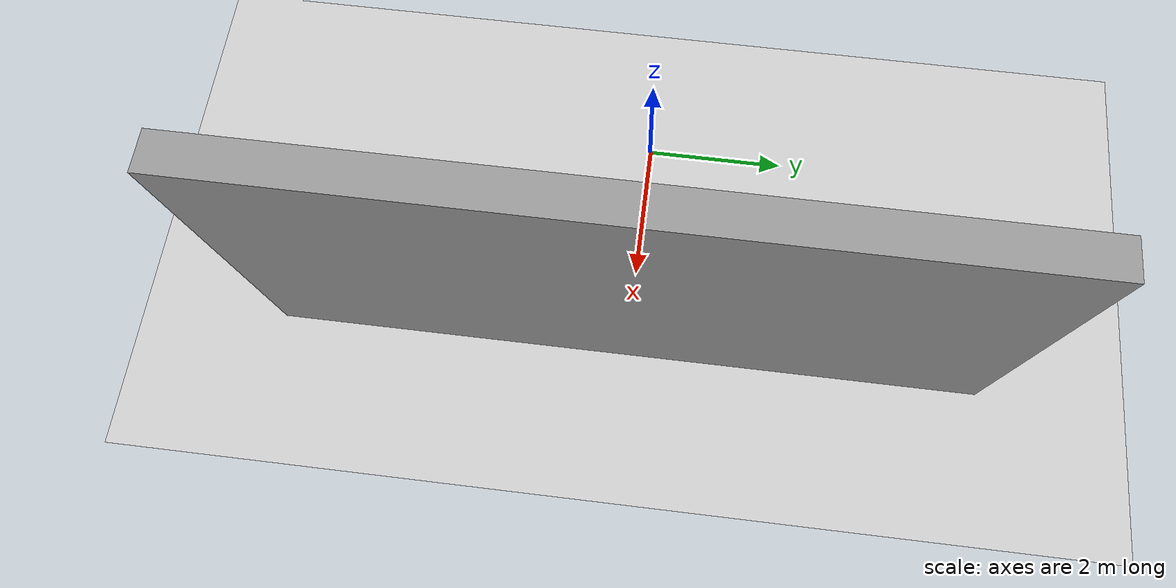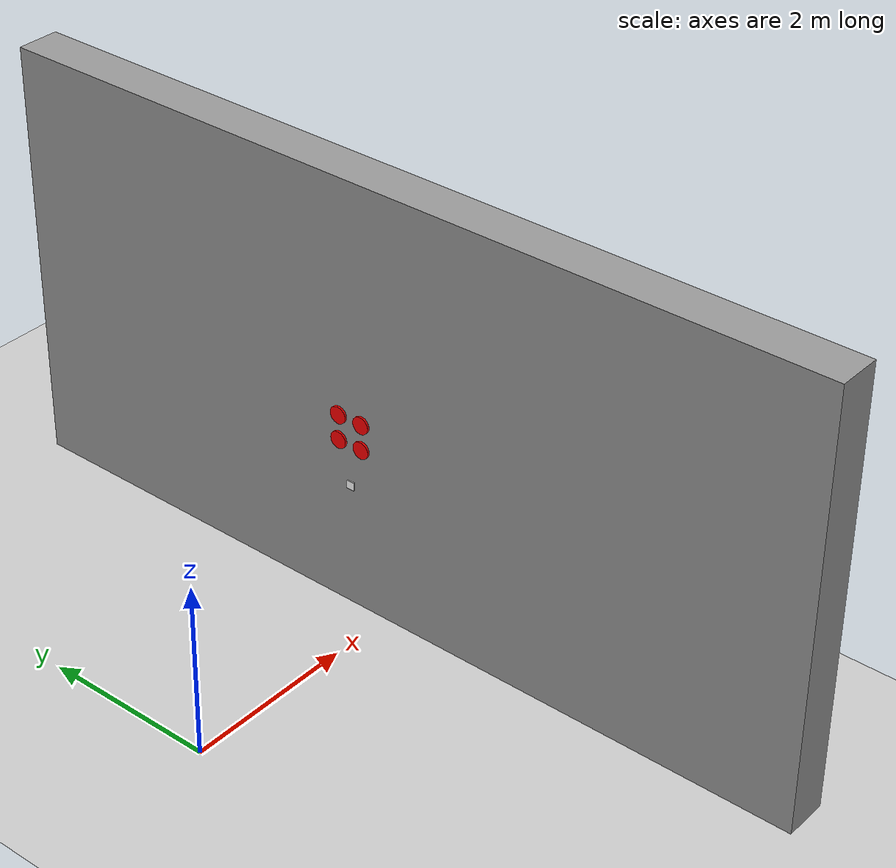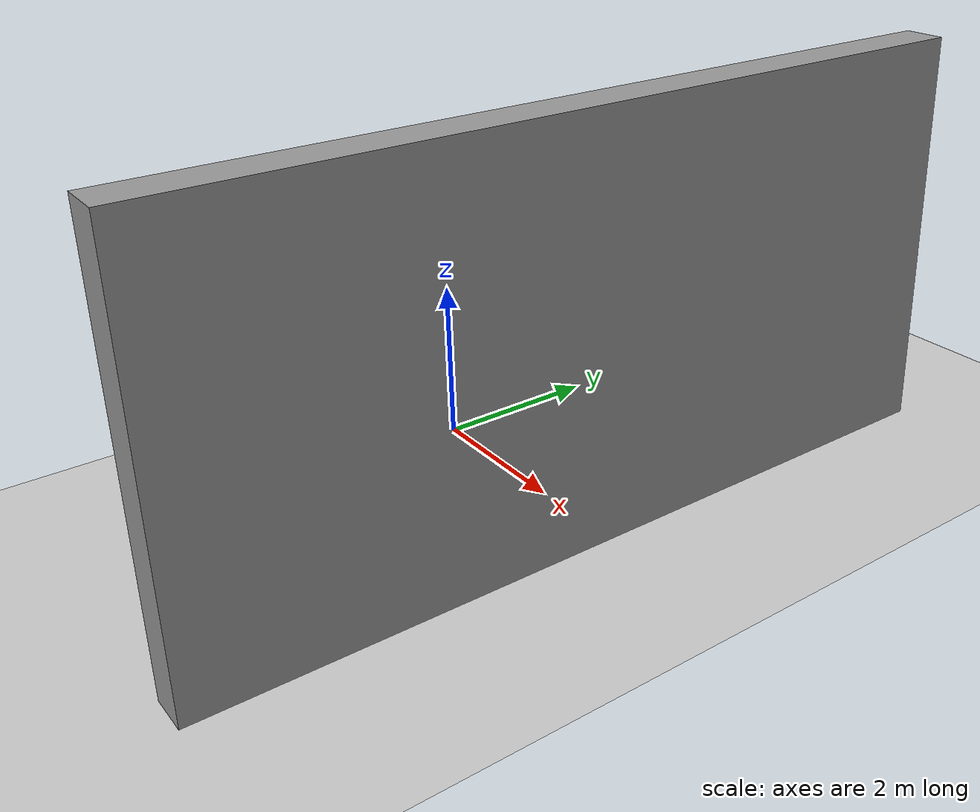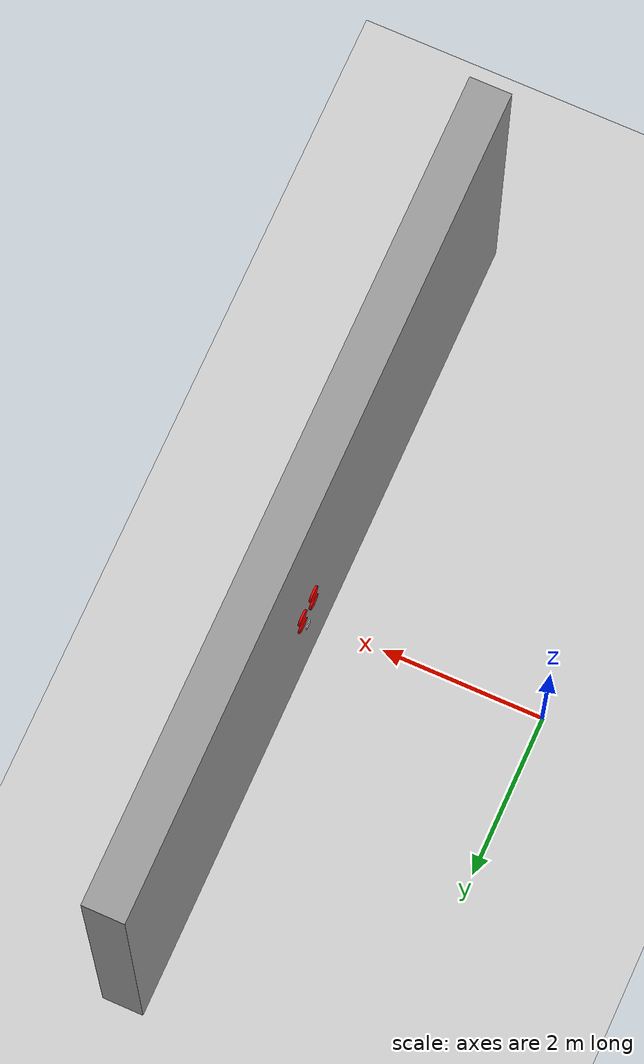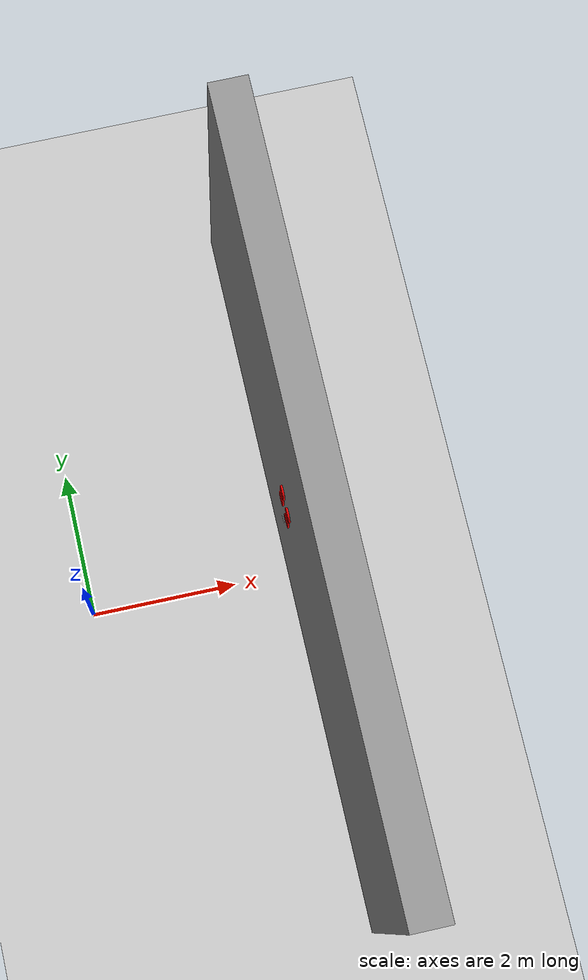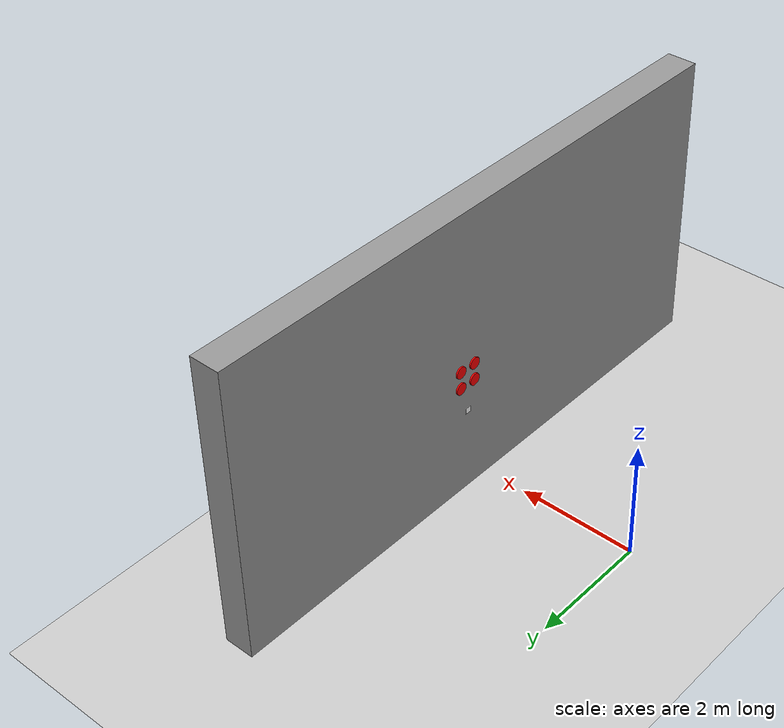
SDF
<sdf version="1.7">
 <world name="default">
  <light name="sun" type="directional">
   <pose>0 0 10 0 -0 0</pose>
   <diffuse>0.8 0.8 0.8 1</diffuse>
   <specular>0.2 0.2 0.2 1</specular>
   <attenuation>
    <range>1000</range>
    <constant>0.9</constant>
    <linear>0.01</linear>
    <quadratic>0.001</quadratic>
   </attenuation>
   <direction>-0.5 0.1 -0.9</direction>
   <spot><inner_angle>0</inner_angle><outer_angle>0</outer_angle><falloff>0</falloff></spot>
  </light>
  <model name="ground_plane">
   <static>1</static>
   <link name="link">
    <collision name="collision">
     <geometry><plane><normal>0 0 1</normal><size>100 100</size></plane></geometry>
     <surface>
      <contact><collide_bitmask>65535</collide_bitmask></contact>
      <friction><ode><mu>100</mu><mu2>50</mu2></ode></friction>
     </surface>
    </collision>
    <visual name="visual">
     <cast_shadows>0</cast_shadows>
     <geometry><plane><normal>0 0 1</normal><size>100 100</size></plane></geometry>
     <material>
      <script><uri>file://media/materials/scripts/gazebo.material</uri><name>Gazebo/Grey</name></script>
     </material>
    </visual>
   </link>
  </model>
  <gravity>0 0 -9.8</gravity>
  <magnetic_field>6e-06 2.3e-05 -4.2e-05</magnetic_field>
  <atmosphere type="adiabatic"/>
  <physics type="ode">
   <max_step_size>0.001</max_step_size>
   <real_time_factor>1</real_time_factor>
   <real_time_update_rate>1000</real_time_update_rate>
  </physics>
  <scene><ambient>0.4 0.4 0.4 1</ambient><background>0.7 0.7 0.7 1</background><shadows>1</shadows></scene>
  <spherical_coordinates>
   <surface_model>EARTH_WGS84</surface_model>
   <latitude_deg>0</latitude_deg>
   <longitude_deg>0</longitude_deg>
   <elevation>0</elevation>
   <heading_deg>0</heading_deg>
  </spherical_coordinates>
  <model name="my_wall">
   <link name="link">
    <inertial>
     <mass>1000</mass>
     <inertia><ixx>166.667</ixx><ixy>0</ixy><ixz>0</ixz><iyy>166.667</iyy><iyz>0</iyz><izz>166.667</izz></inertia>
    </inertial>
    <visual name="visual">
     <geometry><box><size>0.5 10 5</size></box></geometry>
     <material>
      <script><name>Gazebo/Grey</name><uri>file://media/materials/scripts/gazebo.material</uri></script>
      <shader type="pixel"><normal_map>__default__</normal_map></shader>
      <ambient>0.3 0.3 0.3 1</ambient>
      <diffuse>0.7 0.7 0.7 1</diffuse>
      <specular>0.01 0.01 0.01 1</specular>
      <emissive>0 0 0 1</emissive>
     </material>
    </visual>
    <collision name="collision">
     <geometry><box><size>0.5 10 5</size></box></geometry>
     <surface>
      <friction>
       <ode><mu>1</mu><mu2>1</mu2><fdir1>0 0 0</fdir1><slip1>0</slip1><slip2>0</slip2></ode>
       <torsional>
        <coefficient>1</coefficient>
        <patch_radius>0</patch_radius>
        <surface_radius>0</surface_radius>
        <use_patch_radius>1</use_patch_radius>
        <ode><slip>0</slip></ode>
       </torsional>
      </friction>
      <bounce><restitution_coefficient>0</restitution_coefficient><threshold>1e+06</threshold></bounce>
      <contact>
       <collide_without_contact>0</collide_without_contact>
       <collide_without_contact_bitmask>1</collide_without_contact_bitmask>
       <collide_bitmask>1</collide_bitmask>
       <ode>
        <soft_cfm>0</soft_cfm>
        <soft_erp>0.2</soft_erp>
        <kp>1e+13</kp>
        <kd>1</kd>
        <max_vel>0.01</max_vel>
        <min_depth>0</min_depth>
       </ode>
       <bullet>
        <split_impulse>1</split_impulse>
        <split_impulse_penetration_threshold>-0.01</split_impulse_penetration_threshold>
        <soft_cfm>0</soft_cfm>
        <soft_erp>0.2</soft_erp>
        <kp>1e+13</kp>
        <kd>1</kd>
       </bullet>
      </contact>
     </surface>
    </collision>
   </link>
   <static>1</static>
   <pose>3 0 2.50101 0 -0 0</pose>
  </model>
  <model name="my_red_marker_3">
   <link name="link">
    <inertial>
     <mass>1</mass>
     <inertia><ixx>0.145833</ixx><ixy>0</ixy><ixz>0</ixz><iyy>0.145833</iyy><iyz>0</iyz><izz>0.125</izz></inertia>
    </inertial>
    <pose>0 0 0 0 1.57 0</pose>
    <visual name="visual">
     <geometry><cylinder><radius>0.1</radius><length>0.05</length></cylinder></geometry>
     <material>
      <script><name>Gazebo/Grey</name><uri>file://media/materials/scripts/gazebo.material</uri></script>
      <shader type="pixel"><normal_map>__default__</normal_map></shader>
      <ambient>1 0 0 1</ambient>
      <diffuse>1 0 0 1</diffuse>
      <specular>1 0 0 1</specular>
      <emissive>0 0 0 1</emissive>
     </material>
    </visual>
    <collision name="collision">
     <geometry><cylinder><radius>0.1</radius><length>0.05</length></cylinder></geometry>
     <surface>
      <friction>
       <ode><mu>1</mu><mu2>1</mu2><fdir1>0 0 0</fdir1><slip1>0</slip1><slip2>0</slip2></ode>
       <torsional>
        <coefficient>1</coefficient>
        <patch_radius>0</patch_radius>
        <surface_radius>0</surface_radius>
        <use_patch_radius>1</use_patch_radius>
        <ode><slip>0</slip></ode>
       </torsional>
      </friction>
      <bounce><restitution_coefficient>0</restitution_coefficient><threshold>1e+06</threshold></bounce>
      <contact>
       <collide_without_contact>0</collide_without_contact>
       <collide_without_contact_bitmask>1</collide_without_contact_bitmask>
       <collide_bitmask>1</collide_bitmask>
       <ode>
        <soft_cfm>0</soft_cfm>
        <soft_erp>0.2</soft_erp>
        <kp>1e+13</kp>
        <kd>1</kd>
        <max_vel>0.01</max_vel>
        <min_depth>0</min_depth>
       </ode>
       <bullet>
        <split_impulse>1</split_impulse>
        <split_impulse_penetration_threshold>-0.01</split_impulse_penetration_threshold>
        <soft_cfm>0</soft_cfm>
        <soft_erp>0.2</soft_erp>
        <kp>1e+13</kp>
        <kd>1</kd>
       </bullet>
      </contact>
     </surface>
    </collision>
   </link>
   <static>1</static>
   <pose>2.75 0.3 2 0 0.000963 0</pose>
  </model>
  <model name="my_red_marker_3_clone">
   <link name="link">
    <inertial>
     <mass>1</mass>
     <inertia><ixx>0.145833</ixx><ixy>0</ixy><ixz>0</ixz><iyy>0.145833</iyy><iyz>0</iyz><izz>0.125</izz></inertia>
    </inertial>
    <pose>0 0 0 0 1.57 0</pose>
    <visual name="visual">
     <geometry><cylinder><radius>0.1</radius><length>0.05</length></cylinder></geometry>
     <material>
      <script><name>Gazebo/Grey</name><uri>file://media/materials/scripts/gazebo.material</uri></script>
      <shader type="pixel"><normal_map>__default__</normal_map></shader>
      <ambient>1 0 0 1</ambient>
      <diffuse>1 0 0 1</diffuse>
      <specular>1 0 0 1</specular>
      <emissive>0 0 0 1</emissive>
     </material>
    </visual>
    <collision name="collision">
     <geometry><cylinder><radius>0.1</radius><length>0.05</length></cylinder></geometry>
     <surface>
      <friction>
       <ode><mu>1</mu><mu2>1</mu2><fdir1>0 0 0</fdir1><slip1>0</slip1><slip2>0</slip2></ode>
       <torsional>
        <coefficient>1</coefficient>
        <patch_radius>0</patch_radius>
        <surface_radius>0</surface_radius>
        <use_patch_radius>1</use_patch_radius>
        <ode><slip>0</slip></ode>
       </torsional>
      </friction>
      <bounce><restitution_coefficient>0</restitution_coefficient><threshold>1e+06</threshold></bounce>
      <contact>
       <collide_without_contact>0</collide_without_contact>
       <collide_without_contact_bitmask>1</collide_without_contact_bitmask>
       <collide_bitmask>1</collide_bitmask>
       <ode>
        <soft_cfm>0</soft_cfm>
        <soft_erp>0.2</soft_erp>
        <kp>1e+13</kp>
        <kd>1</kd>
        <max_vel>0.01</max_vel>
        <min_depth>0</min_depth>
       </ode>
       <bullet>
        <split_impulse>1</split_impulse>
        <split_impulse_penetration_threshold>-0.01</split_impulse_penetration_threshold>
        <soft_cfm>0</soft_cfm>
        <soft_erp>0.2</soft_erp>
        <kp>1e+13</kp>
        <kd>1</kd>
       </bullet>
      </contact>
     </surface>
    </collision>
   </link>
   <static>1</static>
   <pose>2.75 0.6 2 0 0.000963 0</pose>
  </model>
  <model name="my_red_marker_3_clone_0">
   <link name="link">
    <inertial>
     <mass>1</mass>
     <inertia><ixx>0.145833</ixx><ixy>0</ixy><ixz>0</ixz><iyy>0.145833</iyy><iyz>0</iyz><izz>0.125</izz></inertia>
    </inertial>
    <pose>0 0 0 0 1.57 0</pose>
    <visual name="visual">
     <geometry><cylinder><radius>0.1</radius><length>0.05</length></cylinder></geometry>
     <material>
      <script><name>Gazebo/Grey</name><uri>file://media/materials/scripts/gazebo.material</uri></script>
      <shader type="pixel"><normal_map>__default__</normal_map></shader>
      <ambient>1 0 0 1</ambient>
      <diffuse>1 0 0 1</diffuse>
      <specular>1 0 0 1</specular>
      <emissive>0 0 0 1</emissive>
     </material>
    </visual>
    <collision name="collision">
     <geometry><cylinder><radius>0.1</radius><length>0.05</length></cylinder></geometry>
     <surface>
      <friction>
       <ode><mu>1</mu><mu2>1</mu2><fdir1>0 0 0</fdir1><slip1>0</slip1><slip2>0</slip2></ode>
       <torsional>
        <coefficient>1</coefficient>
        <patch_radius>0</patch_radius>
        <surface_radius>0</surface_radius>
        <use_patch_radius>1</use_patch_radius>
        <ode><slip>0</slip></ode>
       </torsional>
      </friction>
      <bounce><restitution_coefficient>0</restitution_coefficient><threshold>1e+06</threshold></bounce>
      <contact>
       <collide_without_contact>0</collide_without_contact>
       <collide_without_contact_bitmask>1</collide_without_contact_bitmask>
       <collide_bitmask>1</collide_bitmask>
       <ode>
        <soft_cfm>0</soft_cfm>
        <soft_erp>0.2</soft_erp>
        <kp>1e+13</kp>
        <kd>1</kd>
        <max_vel>0.01</max_vel>
        <min_depth>0</min_depth>
       </ode>
       <bullet>
        <split_impulse>1</split_impulse>
        <split_impulse_penetration_threshold>-0.01</split_impulse_penetration_threshold>
        <soft_cfm>0</soft_cfm>
        <soft_erp>0.2</soft_erp>
        <kp>1e+13</kp>
        <kd>1</kd>
       </bullet>
      </contact>
     </surface>
    </collision>
   </link>
   <static>1</static>
   <pose>2.75 0.3 2.3 0 0.000963 0</pose>
  </model>
  <model name="my_red_marker_3_clone_1">
   <link name="link">
    <inertial>
     <mass>1</mass>
     <inertia><ixx>0.145833</ixx><ixy>0</ixy><ixz>0</ixz><iyy>0.145833</iyy><iyz>0</iyz><izz>0.125</izz></inertia>
    </inertial>
    <pose>0 0 0 0 1.57 0</pose>
    <visual name="visual">
     <geometry><cylinder><radius>0.1</radius><length>0.05</length></cylinder></geometry>
     <material>
      <script><name>Gazebo/Grey</name><uri>file://media/materials/scripts/gazebo.material</uri></script>
      <shader type="pixel"><normal_map>__default__</normal_map></shader>
      <ambient>1 0 0 1</ambient>
      <diffuse>1 0 0 1</diffuse>
      <specular>1 0 0 1</specular>
      <emissive>0 0 0 1</emissive>
     </material>
    </visual>
    <collision name="collision">
     <geometry><cylinder><radius>0.1</radius><length>0.05</length></cylinder></geometry>
     <surface>
      <friction>
       <ode><mu>1</mu><mu2>1</mu2><fdir1>0 0 0</fdir1><slip1>0</slip1><slip2>0</slip2></ode>
       <torsional>
        <coefficient>1</coefficient>
        <patch_radius>0</patch_radius>
        <surface_radius>0</surface_radius>
        <use_patch_radius>1</use_patch_radius>
        <ode><slip>0</slip></ode>
       </torsional>
      </friction>
      <bounce><restitution_coefficient>0</restitution_coefficient><threshold>1e+06</threshold></bounce>
      <contact>
       <collide_without_contact>0</collide_without_contact>
       <collide_without_contact_bitmask>1</collide_without_contact_bitmask>
       <collide_bitmask>1</collide_bitmask>
       <ode>
        <soft_cfm>0</soft_cfm>
        <soft_erp>0.2</soft_erp>
        <kp>1e+13</kp>
        <kd>1</kd>
        <max_vel>0.01</max_vel>
        <min_depth>0</min_depth>
       </ode>
       <bullet>
        <split_impulse>1</split_impulse>
        <split_impulse_penetration_threshold>-0.01</split_impulse_penetration_threshold>
        <soft_cfm>0</soft_cfm>
        <soft_erp>0.2</soft_erp>
        <kp>1e+13</kp>
        <kd>1</kd>
       </bullet>
      </contact>
     </surface>
    </collision>
   </link>
   <static>1</static>
   <pose>2.75 0.6 2.3 0 0.000963 0</pose>
  </model>
  <model name="Apriltag36_11_00000_mod_3_0">
   <link name="main">
    <pose>0 0 0 3.14159 -1.57079 3.14159</pose>
    <inertial>
     <mass>1</mass>
     <inertia><ixx>1</ixx><ixy>0</ixy><ixz>0</ixz><iyy>1</iyy><iyz>0</iyz><izz>1</izz></inertia>
    </inertial>
    <visual name="main_Visual">
     <geometry><box><size>0.1 0.1 0.01</size></box></geometry>
     <material>
      <script>
       <uri>model://Apriltag36_11_00000/materials/scripts</uri>
       <uri>model://Apriltag36_11_00000/materials/textures</uri>
       <name>Apriltag36_11_00000</name>
      </script>
      <shader type="pixel"><normal_map>__default__</normal_map></shader>
      <ambient>1 1 1 1</ambient>
      <diffuse>1 1 1 1</diffuse>
      <specular>0 0 0 1</specular>
      <emissive>0 0 0 1</emissive>
     </material>
    </visual>
   </link>
   <static>1</static>
   <pose>2.74 0.45 1.5 0 -0 0</pose>
  </model>
 </world>
</sdf>
